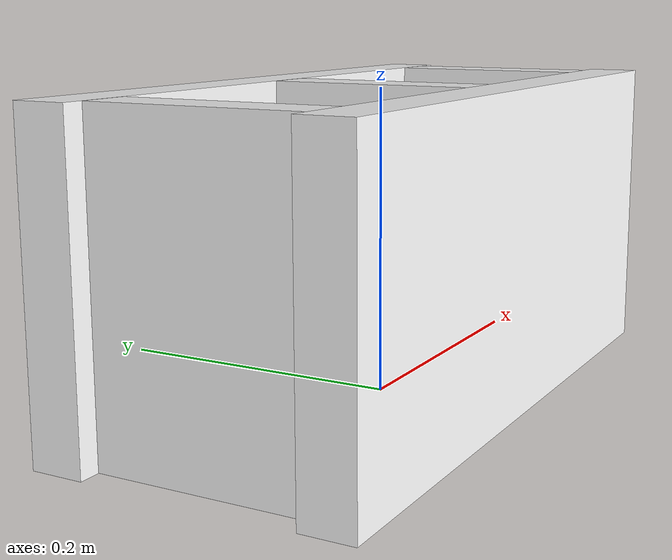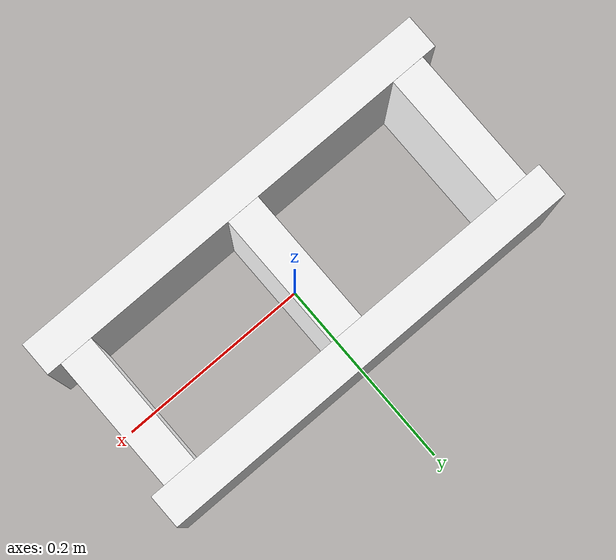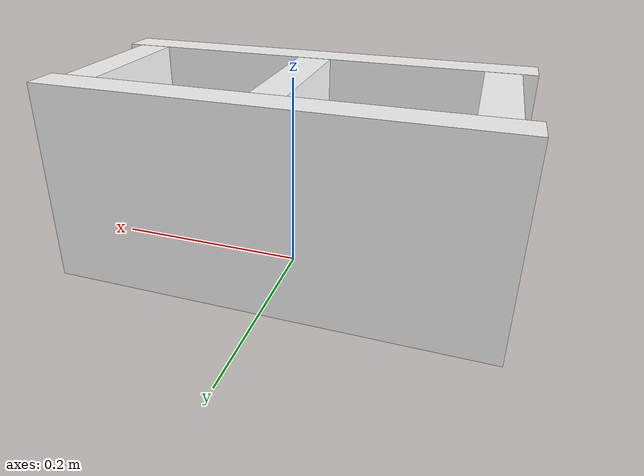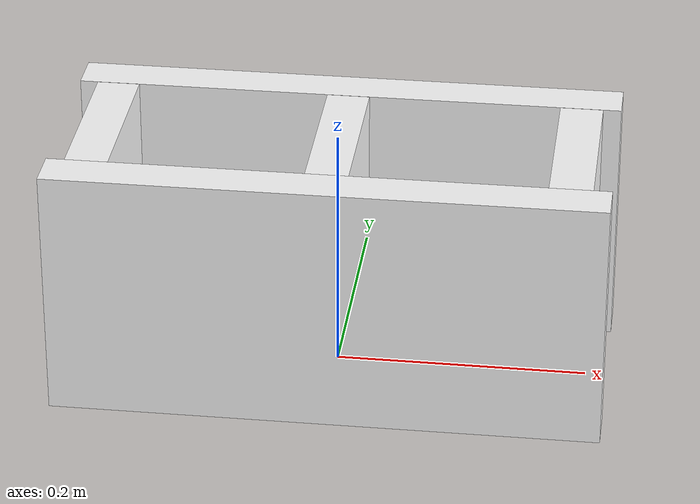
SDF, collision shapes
<?xml version="1.0" ?>
<sdf version="1.5">
  <model name="cinder_block">
    <link name="link">
      <inertial>
        <pose>0 0 0.1016 0 0 0</pose>
        <!-- volume about 0.0085 m^3, density 2000 kg/m^3 -->
        <mass>5</mass>
        <!-- approximate as uniform box 0.37 x 0.17 x 0.20 m -->
        <inertia>
          <ixx>0.028705</ixx>
          <ixy>0.0000</ixy>
          <iyy>0.073708</iyy>
          <ixz>0.0000</ixz>
          <iyz>0.0000</iyz>
          <izz>0.06908</izz>
        </inertia>
      </inertial>
      <visual name="visual">
        <geometry>
          <mesh>
            <uri>model://cinder_block/meshes/cinder_block.dae</uri>
          </mesh>
        </geometry>
        <material>
          <ambient>1 1 1 1</ambient>
          <diffuse>1 1 1 1</diffuse>
          <pbr>
            <metal>
              <albedo_map>model://cinder_block/materials/textures/cinder_block_diffuse.png</albedo_map>
              <roughness>0.92</roughness>
              <metalness>0.0</metalness>
            </metal>
          </pbr>
        </material>
      </visual>
      <collision name="left">
        <pose>0 -0.08465 0.1016 0 0 0</pose>
        <geometry>
          <box>
            <size>0.43495 0.0339 0.2032</size>
          </box>
        </geometry>
        <surface>
          <contact>
            <ode>
              <max_vel>0.1</max_vel>
              <min_depth>0.001</min_depth>
            </ode>
          </contact>
          <friction>
            <ode>
              <mu>1.0</mu>
              <mu2>1.0</mu2>
            </ode>
          </friction>
        </surface>
      </collision>
      <collision name="right">
        <pose>0 0.08465 0.1016 0 0 0</pose>
        <geometry>
          <box>
            <size>0.43495 0.0339 0.2032</size>
          </box>
        </geometry>
        <surface>
          <contact>
            <ode>
              <max_vel>0.1</max_vel>
              <min_depth>0.001</min_depth>
            </ode>
          </contact>
          <friction>
            <ode>
              <mu>1.0</mu>
              <mu2>1.0</mu2>
            </ode>
          </friction>
        </surface>
      </collision>
      <collision name="front">
        <pose>0.18625 0 0.1016 0 0 0</pose>
        <geometry>
          <box>
            <size>0.0339 0.1354 0.203</size>
          </box>
        </geometry>
        <surface>
          <contact>
            <ode>
              <max_vel>0.1</max_vel>
              <min_depth>0.001</min_depth>
            </ode>
          </contact>
          <friction>
            <ode>
              <mu>1.0</mu>
              <mu2>1.0</mu2>
            </ode>
          </friction>
        </surface>
      </collision>
      <collision name="middle">
        <pose>0 0 0.1016 0 0 0</pose>
        <geometry>
          <box>
            <size>0.0339 0.1354 0.203</size>
          </box>
        </geometry>
        <surface>
          <contact>
            <ode>
              <max_vel>0.1</max_vel>
              <min_depth>0.001</min_depth>
            </ode>
          </contact>
          <friction>
            <ode>
              <mu>1.0</mu>
              <mu2>1.0</mu2>
            </ode>
          </friction>
        </surface>
      </collision>
      <collision name="back">
        <pose>-0.18625 0 0.1016 0 0 0</pose>
        <geometry>
          <box>
            <size>0.0339 0.1354 0.203</size>
          </box>
        </geometry>
        <surface>
          <contact>
            <ode>
              <max_vel>0.1</max_vel>
              <min_depth>0.001</min_depth>
            </ode>
          </contact>
          <friction>
            <ode>
              <mu>1.0</mu>
              <mu2>1.0</mu2>
            </ode>
          </friction>
        </surface>
      </collision>
    </link>
  </model>
</sdf>
